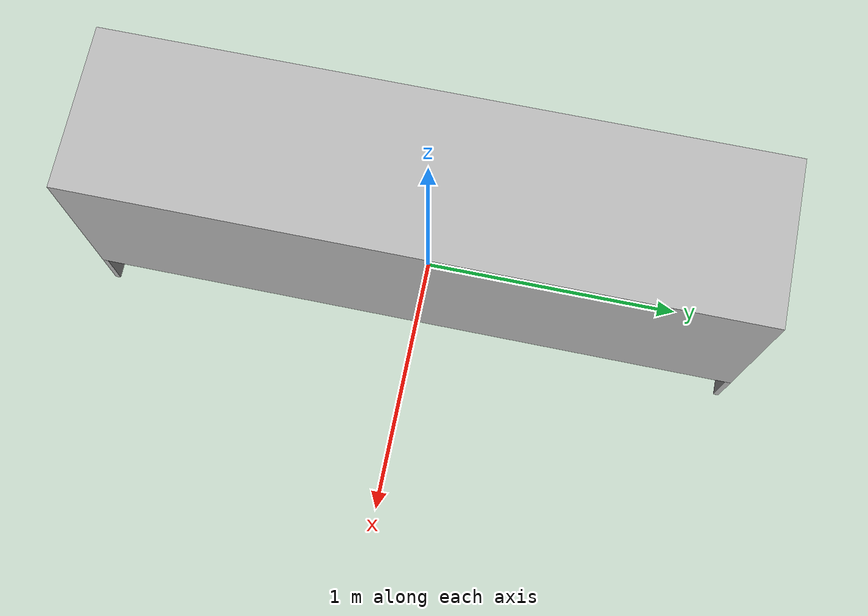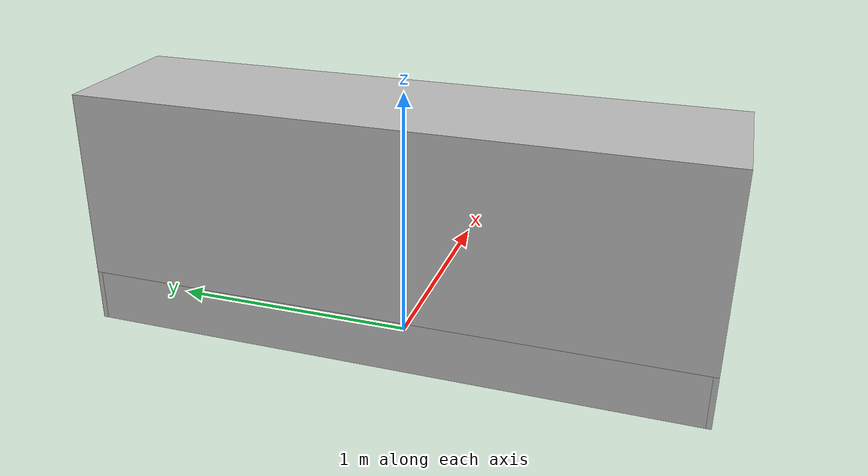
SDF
<?xml version="1.0"?>
<sdf version="1.6">
  <model name="impuls/kitchen" type="counter">
    <link name="1_link">
      <collision name="1_col">
        <geometry>
          <box>
            <size>0.525 2.40 0.21</size>
          </box>
        </geometry>
      </collision>
      <visual name="1_vis">
        <geometry>
          <box>
            <size>0.525 2.40 0.21</size>
          </box>
        </geometry>
      </visual>
      <pose>-0.0375 0.0 0.105 0 0 0</pose>
    </link>
    <link name="2_link">
      <collision name="2_col">
        <geometry>
          <box>
            <size>0.6 2.44 0.75</size>
          </box>
        </geometry>
      </collision>
      <visual name="2_vis">
        <geometry>
          <box>
            <size>0.6 2.44 0.75</size>
          </box>
        </geometry>
      </visual>
      <pose>0.0 0.0 0.585 0 0 0</pose>
    </link>
    <link name="3_link">
      <collision name="3_col">
        <geometry>
          <box>
            <size>0.6 0.02 0.21</size>
          </box>
        </geometry>
      </collision>
      <visual name="3_vis">
        <geometry>
          <box>
            <size>0.6 0.02 0.21</size>
          </box>
        </geometry>
      </visual>
      <pose>0.0 1.21 0.105 0 0 0</pose>
    </link>
    <link name="4_link">
      <collision name="4_col">
        <geometry>
          <box>
            <size>0.6 0.02 0.21</size>
          </box>
        </geometry>
      </collision>
      <visual name="4_vis">
        <geometry>
          <box>
            <size>0.6 0.02 0.21</size>
          </box>
        </geometry>
      </visual>
      <pose>0.0 -1.21 0.105 0 0 0</pose>
    </link>
    <link name="in_front_of">
      <virtual_volume name="in_front_of_vv">
        <geometry>
          <box>
            <size>0.4 2.0 0.01</size>
          </box>
        </geometry>
        <pose>0.6 0.0 0.005 0 0 0</pose>
      </virtual_volume>
    </link>
    <link name="on_top_of">
      <virtual_volume name="on_top_of_vv">
        <geometry>
          <box>
            <size>0.58 2.40 0.5</size>
          </box>
        </geometry>
        <pose>0.0 0.0 1.23 0 0 0</pose>
      </virtual_volume>
    </link>
    <static>true</static>
  </model>
</sdf>
